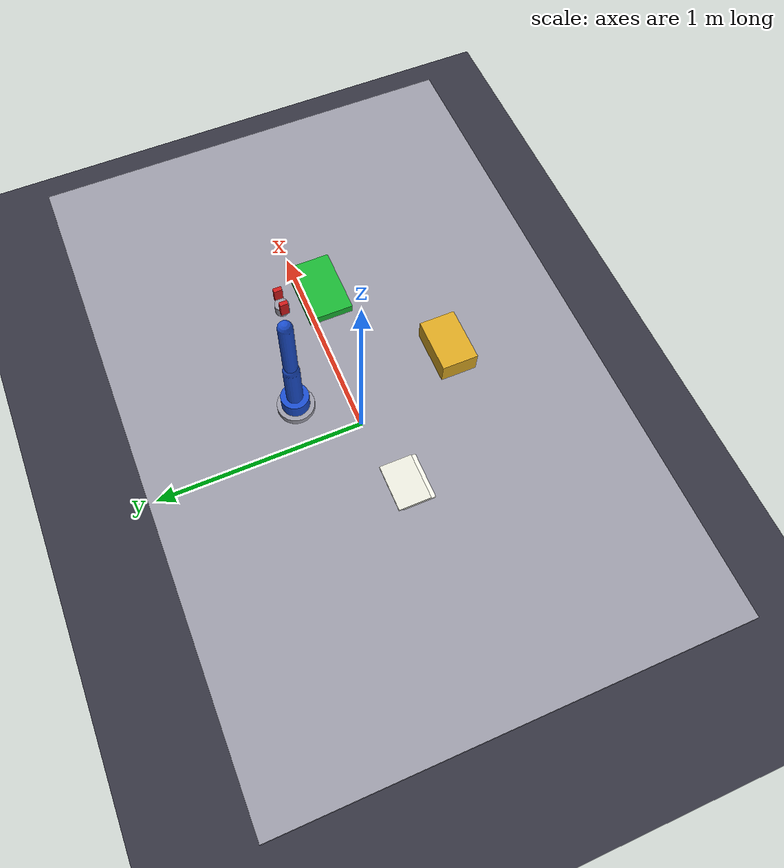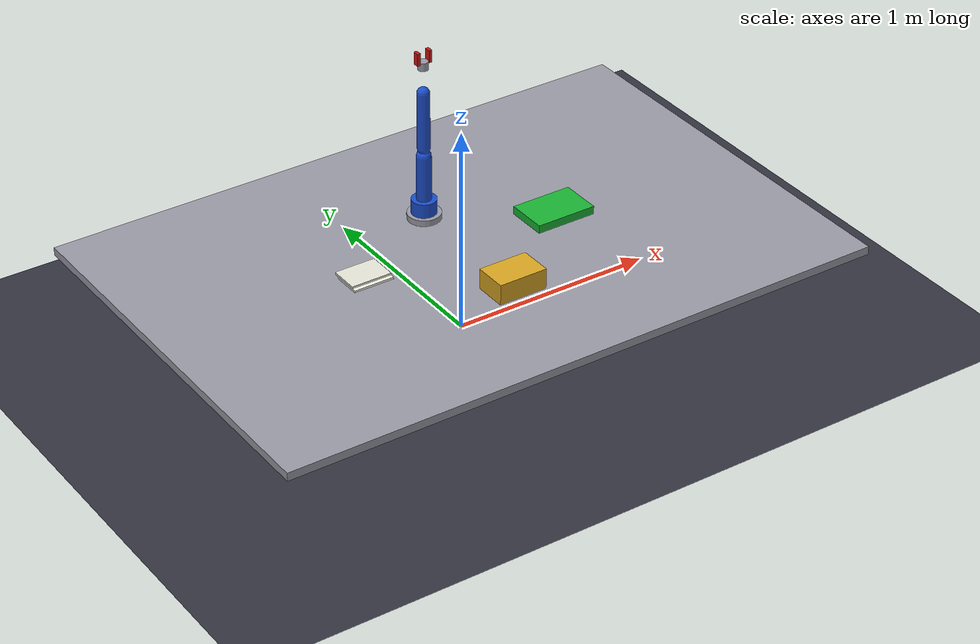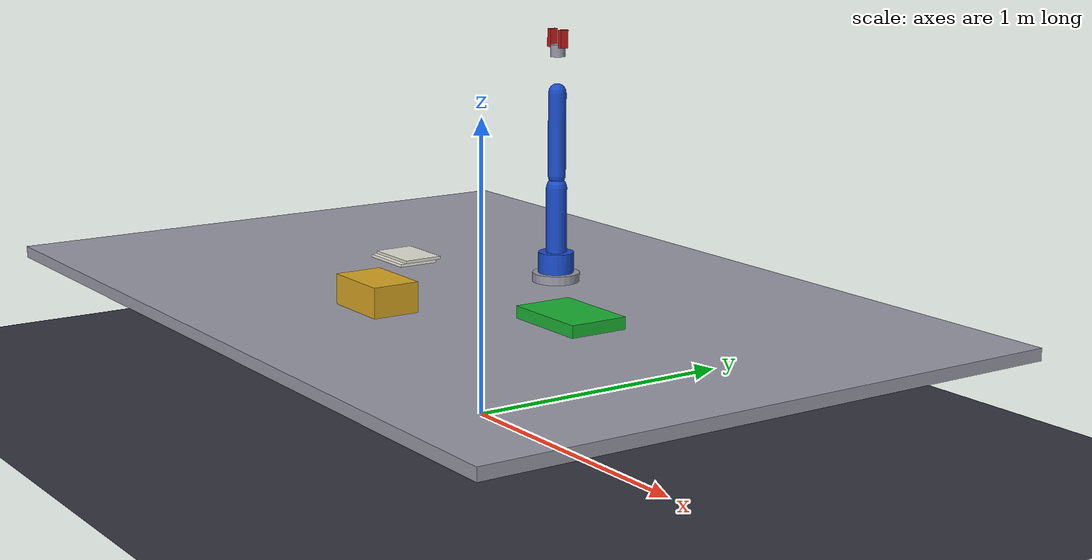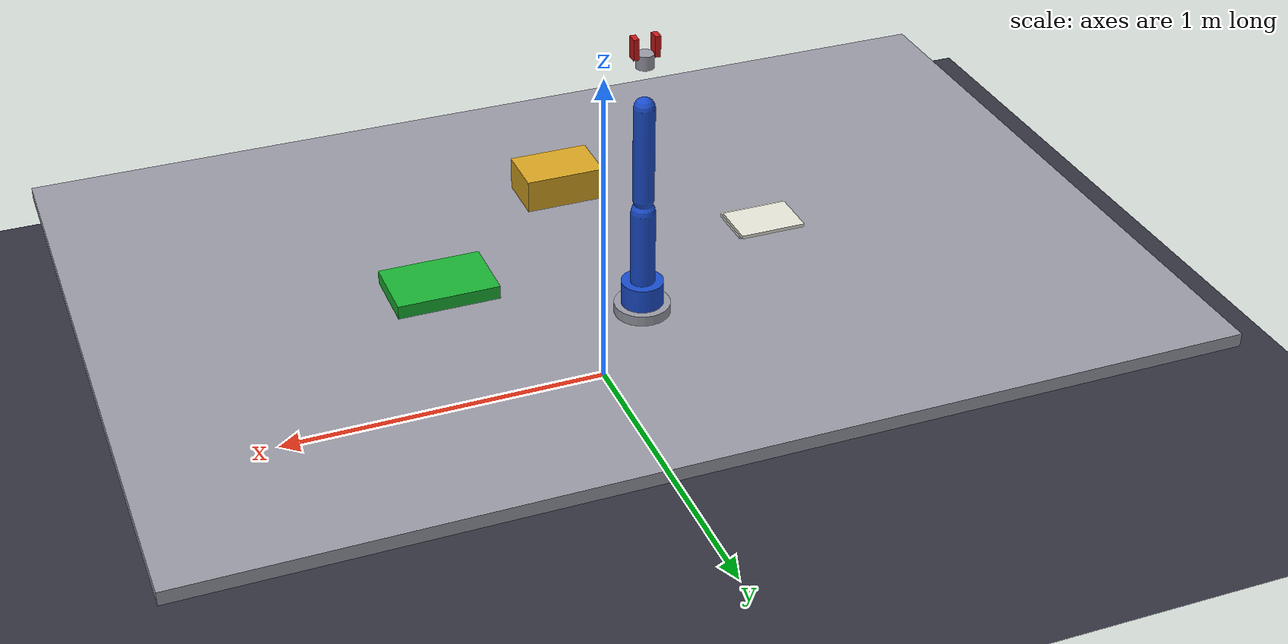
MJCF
<mujoco model="seobaike_finance_arm">
  <compiler angle="radian"/>

  <asset>
    <material name="steel" rgba="0.6 0.6 0.65 1"/>
    <material name="blue" rgba="0.1 0.3 0.8 1"/>
    <material name="red" rgba="0.8 0.1 0.1 1"/>
    <material name="green" rgba="0.1 0.7 0.2 1"/>
    <material name="gold" rgba="0.85 0.65 0.13 1"/>
    <material name="paper" rgba="0.95 0.95 0.9 1"/>
  </asset>

  <worldbody>
    <geom name="counter" size="1.5 1 0.02" pos="0 0 0.4" type="box" material="steel"/>
    <geom name="floor" size="3 3 0.1" type="plane" rgba="0.2 0.2 0.25 1"/>
    <geom name="scanner" size="0.15 0.1 0.03" pos="0.5 0 0.43" type="box" material="green"/>
    <geom name="cashbox" size="0.12 0.08 0.06" pos="0 -0.4 0.46" type="box" material="gold"/>
    <light pos="0 0 4" dir="0 0 -1" diffuse="0.9 0.9 0.9"/>
    <light pos="2 2 3" dir="-0.57735 -0.57735 -0.57735" diffuse="0.3 0.3 0.4"/>
    <body name="doc1" pos="-0.5 0 0.44">
      <joint type="free"/>
      <geom size="0.1 0.07 0.005" type="box" mass="0.05" material="paper"/>
    </body>
    <body name="doc2" pos="-0.5 0.02 0.45">
      <joint type="free"/>
      <geom size="0.1 0.07 0.005" type="box" mass="0.05" rgba="0.9 0.9 0.85 1"/>
    </body>
    <body name="base" pos="0 0.3 0.42">
      <geom size="0.08 0.03" type="cylinder" material="steel"/>
      <body name="turret" pos="0 0 0.06">
        <joint name="base_rotate" pos="0 0 0" axis="0 0 1" range="-3.14159 3.14159" damping="8"/>
        <geom size="0.06 0.04" type="cylinder" material="blue"/>
        <body name="upper_arm" pos="0 0 0.08">
          <joint name="shoulder" pos="0 0 0" axis="0 1 0" range="-1.5708 1.5708" damping="5"/>
          <geom size="0.035 0.18" type="capsule" material="blue"/>
          <body name="forearm" pos="0 0 0.36">
            <joint name="elbow" pos="0 0 0" axis="0 1 0" range="-2.26893 0" damping="4"/>
            <geom size="0.03 0.14" type="capsule" material="blue"/>
            <body name="wrist_body" pos="0 0 0.28">
              <joint name="wrist" pos="0 0 0" axis="1 0 0" range="-1.5708 1.5708" damping="2"/>
              <geom size="0.025 0.02" type="cylinder" material="steel"/>
              <body name="grip_l" pos="-0.03 0 0.04">
                <joint name="grip_left" pos="0 0 0" axis="1 0 0" type="slide" range="-0.01 0.03" damping="1"/>
                <geom size="0.008 0.015 0.03" type="box" material="red"/>
              </body>
              <body name="grip_r" pos="0.03 0 0.04">
                <joint name="grip_right" pos="0 0 0" axis="1 0 0" type="slide" range="-0.03 0.01" damping="1"/>
                <geom size="0.008 0.015 0.03" type="box" material="red"/>
              </body>
            </body>
          </body>
        </body>
      </body>
    </body>
  </worldbody>

  <actuator>
    <general joint="base_rotate" ctrlrange="-30 30"/>
    <general joint="shoulder" ctrlrange="-40 40"/>
    <general joint="elbow" ctrlrange="-40 40"/>
    <general joint="wrist" ctrlrange="-15 15"/>
    <general joint="grip_left" ctrlrange="-5 5"/>
    <general joint="grip_right" ctrlrange="-5 5"/>
  </actuator>
</mujoco>
